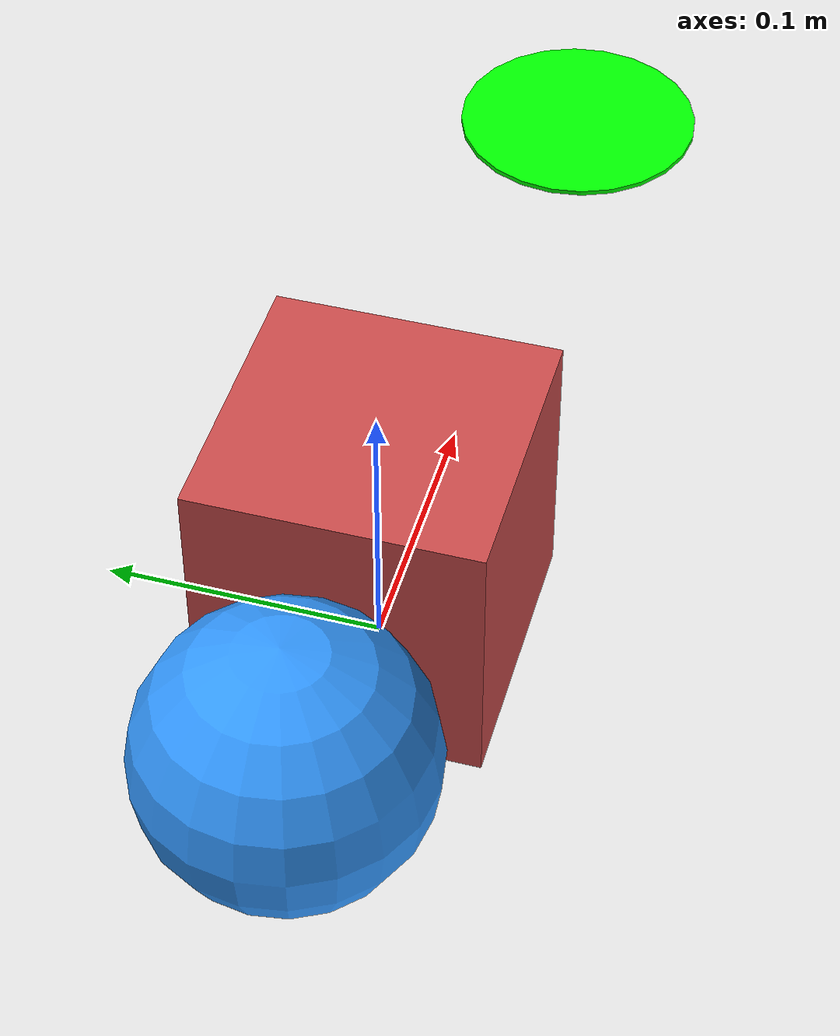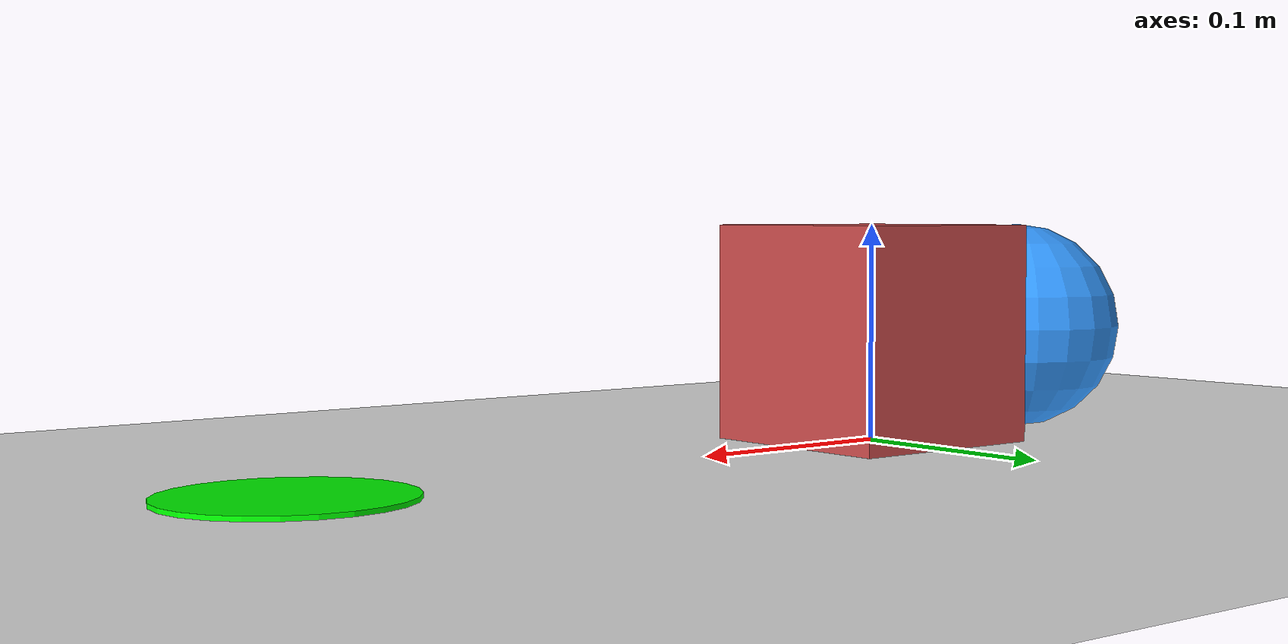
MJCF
<mujoco model="ball_block_2d">

  <option timestep="0.03"
          gravity="0 0 -9.81"/>

  <size njmax="20" nconmax="10"/>

  <!-- Softer contact + reasonable friction -->
  <default>
    <geom friction="0.8 0.01 0.001"
          solref="0.01 1"
          solimp="0.9 0.95 0.001"/>
  </default>

  <worldbody>

    <!-- Ground plane -->
    <geom type="plane" size="5 5 0.1" rgba="0.9 0.9 0.9 1"/>
    <!-- Visual marker (green circle at 0.3, 0) -->
    <geom type="cylinder" pos="0.3 0.0 0.001" size="0.05 0.001" rgba="0 1 0 1" contype="0" conaffinity="0"/>

    <!-- Ball (lighter + damped) -->
    <body name="ball" pos="-0.1 0.0 0.05">
      <joint name="ball_x" type="slide" axis="1 0 0" damping="2"/>
      <joint name="ball_y" type="slide" axis="0 1 0" damping="2"/>

      <!-- Explicit mass instead of density -->
      <!-- Ball -->
      <inertial pos="0 0 0"
                mass="0.1"
                diaginertia="0.0005 0.0005 0.0005"/>

      <geom type="sphere" size="0.05" rgba="0.2 0.6 1 1"/>
    </body>

    <!-- Block (moderate mass + damping) -->
    <body name="block" pos="0.0 0 0.05">
      <joint name="block_x" type="slide" axis="1 0 0" damping="1"/>
      <joint name="block_y" type="slide" axis="0 1 0" damping="1"/>
      <joint name="block_yaw" type="hinge" axis="0 0 1" damping="0.2"/>

            <!-- Block -->
      <inertial pos="0 0 0"
                mass="0.3"
                diaginertia="0.002 0.002 0.002"/>

      <geom type="box" size="0.05 0.05 0.05" rgba="0.8 0.3 0.3 1"/>
    </body>

  </worldbody>

  <actuator>
    <!-- Reduced force range -->
    <motor joint="ball_x" ctrlrange="-8 8"/>
    <motor joint="ball_y" ctrlrange="-8 8"/>
  </actuator>

</mujoco>
